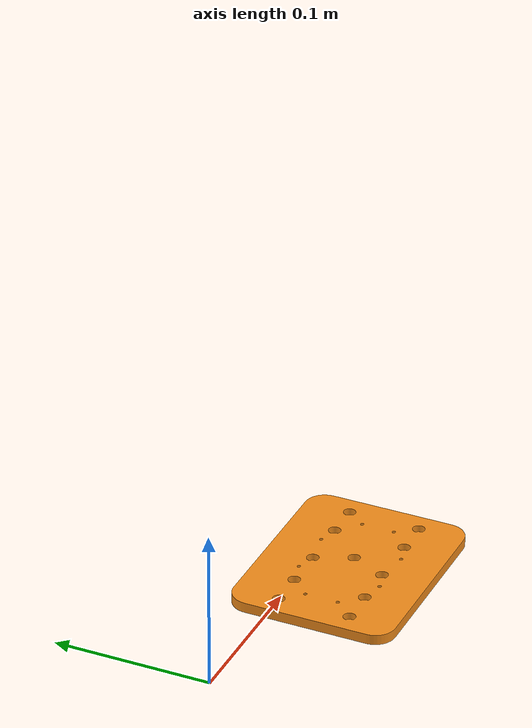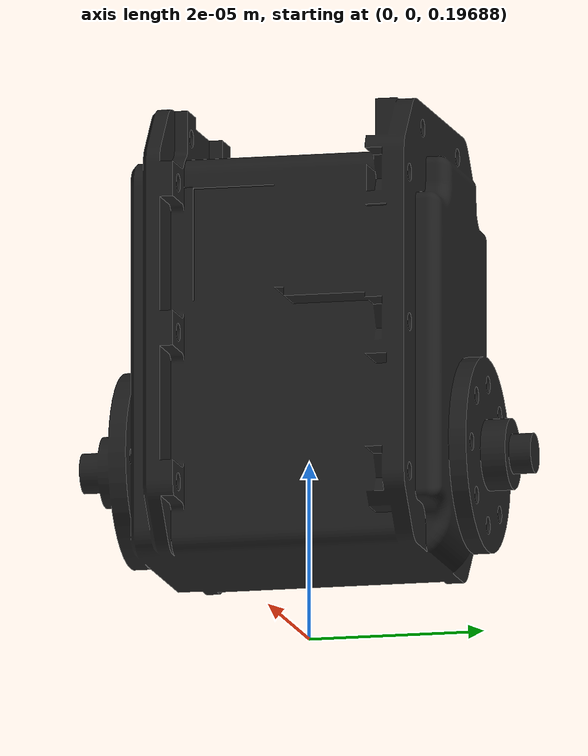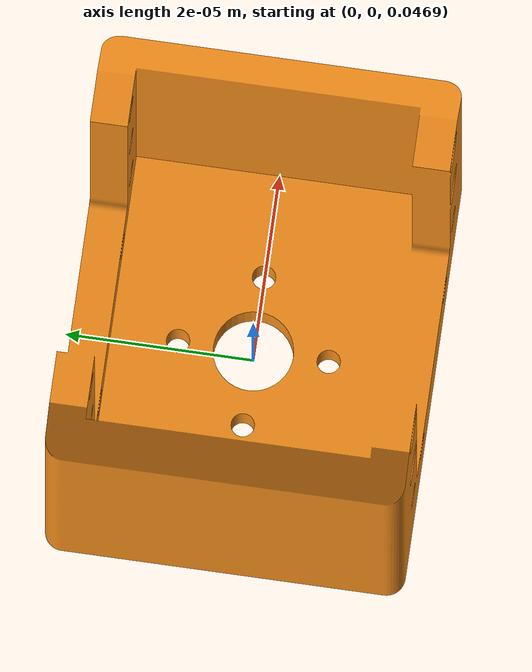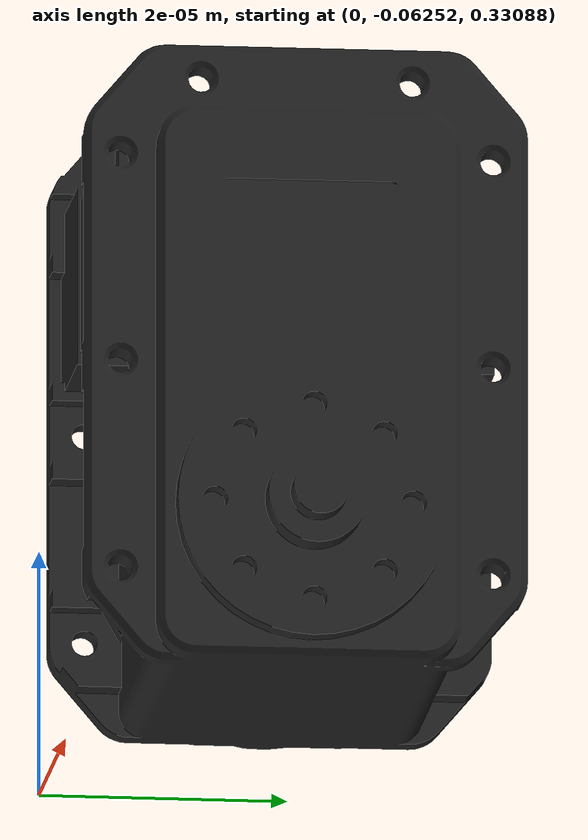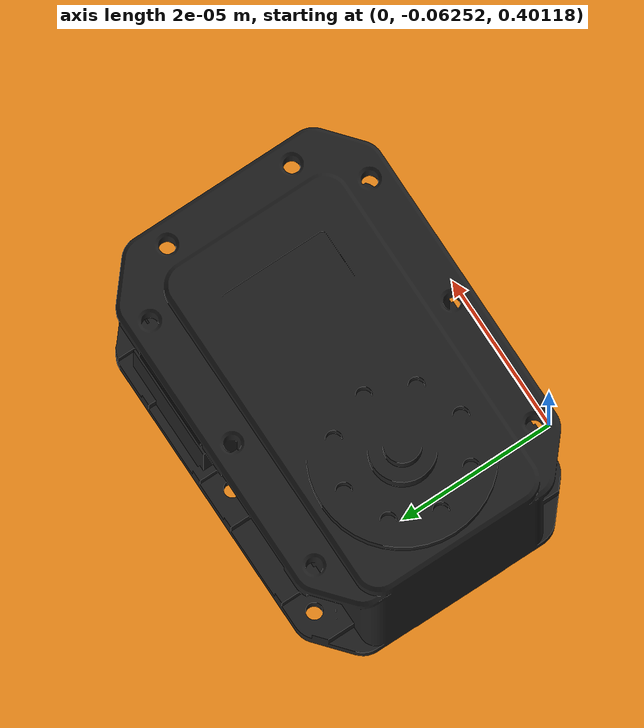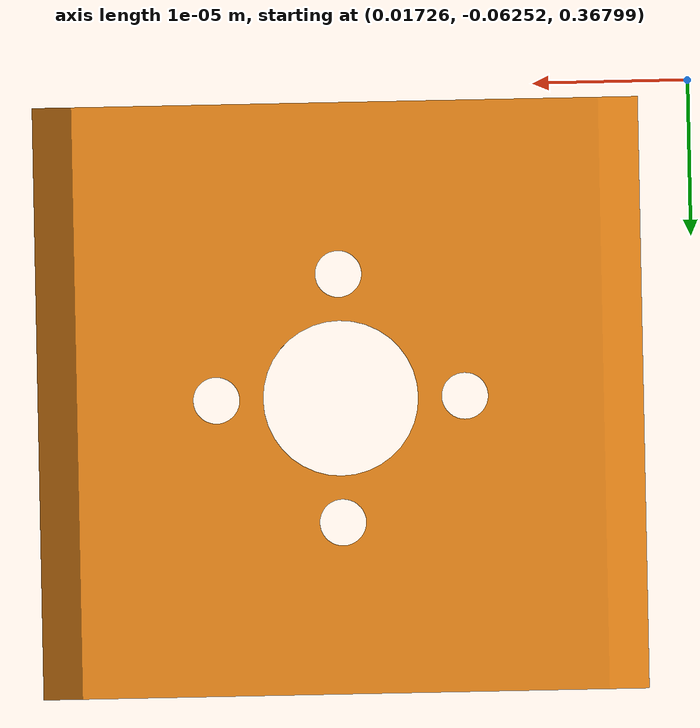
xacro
<?xml version="1.0"?>
<robot name="bbot" xmlns:xacro="http://www.ros.org/wiki/xacro">
	<!-- Import Rviz colors -->
	<xacro:include filename="$(find bbot_description)/urdf/materials.xacro" />

	<!-- Import the bbot macro -->
	<xacro:include filename="$(find bbot_description)/urdf/bbot.xacro"/>

  <!-- arguments to pass on -->
  <xacro:arg name="hardware_interface" default="PositionJointInterface"/>
	<xacro:arg name="robot_name" default="bbot"/>
	<xacro:arg name="origin_xyz" default="0 0 0"/>
  <xacro:arg name="origin_rpy" default="0 0 0"/>

  <!-- Fix to world-->
  <link name="world"/>

  <!-- call bbot xacro -->
  <xacro:bbot hardware_interface="$(arg hardware_interface)" robot_name="$(arg robot_name)" parent="world">
  	<origin xyz="$(arg origin_xyz)" rpy="$(arg origin_rpy)"/>
  </xacro:bbot>

</robot>

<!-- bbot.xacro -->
<robot xmlns:xacro="http://www.ros.org/wiki/xacro">
    <!-- Import all Gazebo customization elements including colors-->
    <xacro:include filename="$(find bbot_description)/urdf/bbot.gazebo.xacro"/>
    <!-- Import Transmissions -->
    <xacro:include filename="$(find bbot_description)/urdf/bbot.transmission.xacro" />

    <!-- Include Utilities -->

    <!--Define properties-->
    <xacro:property name="safety_controller_k_pos" value="100" />
    <xacro:property name="safety_controller_k_vel" value="2" />
    <xacro:property name="joint_damping" value="0.5" />
    <xacro:property name="max_effort" value="300"/>
    <xacro:property name="max_velocity" value="10"/>

    <xacro:macro name="bbot" params="parent hardware_interface robot_name *origin">
        <!-- joint between parent (a.k.a. world) and link_0 -->
        <joint name="${parent}_${robot_name}_joint" type="fixed">
            <xacro:insert_block name="origin"/>
            <parent link="${parent}"/>
            <child link="${robot_name}_link_baseplate"/>
        </joint>

        <link name="${robot_name}_link_baseplate">
            <inertial>
                <origin xyz="0 0 0" rpy="${pi/2.0} 0 0"/>
                <mass value="1"/>
                <inertia ixx="0.000070" ixy="0" ixz="0" iyy="0.000174" iyz="0" izz="0.000107"/>
            </inertial>

            <visual>
                <origin xyz="0 0 0" rpy="${pi/2.0} 0 0"/>
                <geometry>
                    <mesh filename="package://bbot_description/meshes/baseplate.stl" scale="0.001 0.001 0.001"/>
                </geometry>
                <material name="Orange"/>
            </visual>

            <collision>
                <origin xyz="0 0 0" rpy="${pi/2.0} 0 0"/>
                <geometry>
                    <mesh filename="package://bbot_description/meshes/baseplate.stl" scale="0.001 0.001 0.001"/>
                </geometry>
                <material name="Orange"/>
            </collision>
        </link>

        <joint name="${robot_name}_joint_base_motor1" type="fixed">
            <parent link="${robot_name}_link_baseplate"/>
            <child link="${robot_name}_link_motor1"/>
            <origin xyz="0 0 0.0264" rpy="0 0 0"/>
        </joint>

        <link name="${robot_name}_link_motor1">
            <inertial>
                <origin xyz="0 0 0" rpy="0 0 ${pi/2.0}"/>
                <mass value="1"/>
                <inertia ixx="0.000031" ixy="0" ixz="0" iyy="0.000013" iyz="0" izz="0.000027"/>
            </inertial>

            <visual>
                <origin xyz="0 0 0" rpy="0 0 ${pi/2.0}"/>
                <geometry>
                    <mesh filename="package://bbot_description/meshes/motor_no_idler.stl" scale="0.001 0.001 0.001"/>
                </geometry>
                <material name="Black"/>
            </visual>

            <collision>
                <origin xyz="0 0 0" rpy="0 0 ${pi/2.0}"/>
                <geometry>
                    <mesh filename="package://bbot_description/meshes/motor_no_idler.stl" scale="0.001 0.001 0.001"/>
                </geometry>
                <material name="Black"/>
            </collision>
        </link>

        <joint name="${robot_name}_joint_motor1_link1_2" type="revolute">
            <parent link="${robot_name}_link_motor1"/>
            <child link="${robot_name}_link1_2"/>
            <origin xyz="0 0 0.0205" rpy="0 0 0"/>
            <axis xyz="0 0 1"/>
            <limit lower="${-170 * pi / 180}" upper="${170 * pi / 180}"
                effort="${max_effort}" velocity="${max_velocity}" />
            <safety_controller soft_lower_limit="${-168 * pi / 180}"
                     soft_upper_limit="${168 * pi / 180}"
                     k_position="${safety_controller_k_pos}"
                     k_velocity="${safety_controller_k_vel}"/>
            <dynamics damping="${joint_damping}"/>
        </joint>

        <link name="${robot_name}_link1_2">
            <inertial>
                <origin xyz="0 0 0" rpy="${pi/2.0} 0 ${pi/2.0}"/>
                <mass value="1"/>
                <inertia ixx="1.0" ixy="0" ixz="0" iyy="1" iyz="0" izz="1"/>
            </inertial>

            <visual>
                <origin xyz="0 0 0" rpy="${pi/2.0} 0 ${pi/2.0}"/>
                <geometry>
                    <mesh filename="package://bbot_description/meshes/link1_2.stl" scale="0.001 0.001 0.001"/>
                </geometry>
                <material name="Orange"/>
            </visual>

            <collision>
                <origin xyz="0 0 0" rpy="${pi/2.0} 0 ${pi/2.0}"/>
                <geometry>
                    <mesh filename="package://bbot_description/meshes/link1_2.stl" scale="0.001 0.001 0.001"/>
                </geometry>
                <material name="Orange"/>
            </collision>
        </link>

        <joint name="${robot_name}_joint_link1_2_motor2" type="fixed">
            <parent link="${robot_name}_link1_2"/>
            <child link="${robot_name}_link_motor2"/>
            <origin xyz="0 0 0.045" rpy="${pi/2.0} ${-pi/2.0} 0"/>
        </joint>

        <link name="${robot_name}_link_motor2">
            <inertial>
                <origin xyz="0 0 0" rpy="0 0 ${-pi/2.0}"/>
                <mass value="1"/>
                <inertia ixx="1.0" ixy="0" ixz="0" iyy="1" iyz="0" izz="1"/>
            </inertial>

            <visual>
                <origin xyz="0 0 0" rpy="0 0 ${-pi/2.0}"/>
                <geometry>
                    <mesh filename="package://bbot_description/meshes/motor_with_idler.stl" scale="0.001 0.001 0.001"/>
                </geometry>
                <material name="Black"/>
            </visual>

            <collision>
                <origin xyz="0 0 0" rpy="0 0 ${-pi/2.0}"/>
                <geometry>
                    <mesh filename="package://bbot_description/meshes/motor_with_idler.stl" scale="0.001 0.001 0.001"/>
                </geometry>
                <material name="Black"/>
            </collision>
        </link>

        <joint name="${robot_name}_joint_motor2_link2_3" type="revolute">
            <parent link="${robot_name}_link_motor2"/>
            <child link="${robot_name}_link2_3"/>
            <origin xyz="0 0 0" rpy="0 0 0"/>
            <axis xyz="0 0 1"/>
            <limit lower="${-170 * pi / 180}" upper="${170 * pi / 180}"
                effort="${max_effort}" velocity="${max_velocity}" />
            <safety_controller soft_lower_limit="${-168 * pi / 180}"
                     soft_upper_limit="${168 * pi / 180}"
                     k_position="${safety_controller_k_pos}"
                     k_velocity="${safety_controller_k_vel}"/>
            <dynamics damping="${joint_damping}"/>
        </joint>

        <link name="${robot_name}_link2_3">
            <inertial>
                <origin xyz="0.0275 0 0" rpy="${pi/2.0} ${-pi/2.0} 0"/>
                <mass value="1"/>
                <inertia ixx="1.0" ixy="0" ixz="0" iyy="1" iyz="0" izz="1"/>
            </inertial>

            <visual>
                <origin xyz="0.0275 0 0" rpy="${pi/2.0} ${-pi/2.0} 0"/>
                <geometry>
                    <mesh filename="package://bbot_description/meshes/link2_3.stl" scale="0.001 0.001 0.001"/>
                </geometry>
                <material name="Orange"/>
            </visual>

            <collision>
                <origin xyz="0.0275 0 0" rpy="${pi/2.0} ${-pi/2.0} 0"/>
                <geometry>
                    <mesh filename="package://bbot_description/meshes/link2_3.stl" scale="0.001 0.001 0.001"/>
                </geometry>
                <material name="Orange"/>
            </collision>
        </link>

        <joint name="${robot_name}_joint_link2_3_motor3" type="revolute">
            <parent link="${robot_name}_link2_3"/>
            <child link="${robot_name}_link_motor3"/>
            <origin xyz="0.105 0 0" rpy="0 0 0"/>
            <axis xyz="0 0 1"/>
            <limit lower="${-170 * pi / 180}" upper="${170 * pi / 180}"
                effort="${max_effort}" velocity="${max_velocity}" />
            <safety_controller soft_lower_limit="${-168 * pi / 180}"
                     soft_upper_limit="${168 * pi / 180}"
                     k_position="${safety_controller_k_pos}"
                     k_velocity="${safety_controller_k_vel}"/>
            <dynamics damping="${joint_damping}"/>
        </joint>

        <link name="${robot_name}_link_motor3">
            <inertial>
                <origin xyz="0 0 0" rpy="0 0 ${pi/2.0}"/>
                <mass value="1"/>
                <inertia ixx="1.0" ixy="0" ixz="0" iyy="1" iyz="0" izz="1"/>
            </inertial>

            <visual>
                <origin xyz="0 0 0" rpy="0 0 ${pi/2.0}"/>
                <geometry>
                    <mesh filename="package://bbot_description/meshes/motor_with_idler.stl" scale="0.001 0.001 0.001"/>
                </geometry>
                <material name="Black"/>
            </visual>

            <collision>
                <origin xyz="0 0 0" rpy="0 0 ${pi/2.0}"/>
                <geometry>
                    <mesh filename="package://bbot_description/meshes/motor_with_idler.stl" scale="0.001 0.001 0.001"/>
                </geometry>
                <material name="Black"/>
            </collision>
        </link>

        <joint name="${robot_name}_joint_motor3_link3_4" type="fixed">
            <parent link="${robot_name}_link_motor3"/>
            <child link="${robot_name}_link3_4"/>
            <origin xyz="0 0 0" rpy="0 0 0"/>
        </joint>

        <link name="${robot_name}_link3_4">
            <inertial>
                <origin xyz="0.067 0 0.01" rpy="0 0 0"/>
                <mass value="1"/>
                <inertia ixx="1.0" ixy="0" ixz="0" iyy="1" iyz="0" izz="1"/>
            </inertial>

            <visual>
                <origin xyz="0.067 0 0.01" rpy="0 0 0"/>
                <geometry>
                    <mesh filename="package://bbot_description/meshes/link3_4.stl" scale="0.001 0.001 0.001"/>
                </geometry>
                <material name="Orange"/>
            </visual>

            <collision>
                <origin xyz="0.067 0 0.01" rpy="0 0 0"/>
                <geometry>
                    <mesh filename="package://bbot_description/meshes/link3_4.stl" scale="0.001 0.001 0.001"/>
                </geometry>
                <material name="Orange"/>
            </collision>
        </link>

        <joint name="${robot_name}_joint_link3_4_motor4" type="fixed">
            <parent link="${robot_name}_link3_4"/>
            <child link="${robot_name}_link_motor4"/>
            <origin xyz="0.134 0 0" rpy="0 0 0"/>
        </joint>

        <link name="${robot_name}_link_motor4">
            <inertial>
                <origin xyz="0 0 0" rpy="0 0 ${-pi/2.0}"/>
                <mass value="1"/>
                <inertia ixx="1.0" ixy="0" ixz="0" iyy="1" iyz="0" izz="1"/>
            </inertial>

            <visual>
                <origin xyz="0 0 0" rpy="0 0 ${-pi/2.0}"/>
                <geometry>
                    <mesh filename="package://bbot_description/meshes/motor_with_idler.stl" scale="0.001 0.001 0.001"/>
                </geometry>
                <material name="Black"/>
            </visual>

            <collision>
                <origin xyz="0 0 0" rpy="0 0 ${-pi/2.0}"/>
                <geometry>
                    <mesh filename="package://bbot_description/meshes/motor_with_idler.stl" scale="0.001 0.001 0.001"/>
                </geometry>
                <material name="Black"/>
            </collision>
        </link>

        <joint name="${robot_name}_joint_motor4_link4_5" type="revolute">
            <parent link="${robot_name}_link_motor4"/>
            <child link="${robot_name}_link4_5"/>
            <origin xyz="0 0 0" rpy="0 0 0"/>
            <axis xyz="0 0 1"/>
            <limit lower="${-170 * pi / 180}" upper="${170 * pi / 180}"
                effort="${max_effort}" velocity="${max_velocity}" />
            <safety_controller soft_lower_limit="${-168 * pi / 180}"
                     soft_upper_limit="${168 * pi / 180}"
                     k_position="${safety_controller_k_pos}"
                     k_velocity="${safety_controller_k_vel}"/>
            <dynamics damping="${joint_damping}"/>
        </joint>

        <link name="${robot_name}_link4_5">
            <inertial>
                <origin xyz="0 0 0.0235" rpy="0 0 0"/>
                <mass value="1"/>
                <inertia ixx="1.0" ixy="0" ixz="0" iyy="1" iyz="0" izz="1"/>
            </inertial>

            <visual>
                <origin xyz="0 0 0.0235" rpy="0 0 0"/>
                <geometry>
                    <mesh filename="package://bbot_description/meshes/link4_5.stl" scale="0.001 0.001 0.001"/>
                </geometry>
                <material name="Orange"/>
            </visual>

            <collision>
                <origin xyz="0 0 0.0235" rpy="0 0 0"/>
                <geometry>
                    <mesh filename="package://bbot_description/meshes/link4_5.stl" scale="0.001 0.001 0.001"/>
                </geometry>
                <material name="Orange"/>
            </collision>
        </link>

        <joint name="${robot_name}_joint_link4_5_motor5" type="revolute">
            <parent link="${robot_name}_link4_5"/>
            <child link="${robot_name}_link_motor5"/>
            <origin xyz="0 0 0.0625" rpy="${pi/2.0} ${-pi/2.0} 0"/>
            <axis xyz="0 0 1"/>
            <limit lower="${-170 * pi / 180}" upper="${170 * pi / 180}"
                effort="${max_effort}" velocity="${max_velocity}" />
            <safety_controller soft_lower_limit="${-168 * pi / 180}"
                     soft_upper_limit="${168 * pi / 180}"
                     k_position="${safety_controller_k_pos}"
                     k_velocity="${safety_controller_k_vel}"/>
            <dynamics damping="${joint_damping}"/>
        </joint>

        <link name="${robot_name}_link_motor5">
            <inertial>
                <origin xyz="0 0 0" rpy="0 0 0"/>
                <mass value="1"/>
                <inertia ixx="1.0" ixy="0" ixz="0" iyy="1" iyz="0" izz="1"/>
            </inertial>

            <visual>
                <origin xyz="0 0 0" rpy="0 0 0"/>
                <geometry>
                    <mesh filename="package://bbot_description/meshes/motor_with_idler.stl" scale="0.001 0.001 0.001"/>
                </geometry>
                <material name="Black"/>
            </visual>

            <collision>
                <origin xyz="0 0 0" rpy="0 0 0"/>
                <geometry>
                    <mesh filename="package://bbot_description/meshes/motor_with_idler.stl" scale="0.001 0.001 0.001"/>
                </geometry>
                <material name="Black"/>
            </collision>
        </link>

        <joint name="${robot_name}_joint_motor5_link5_6" type="fixed">
            <parent link="${robot_name}_link_motor5"/>
            <child link="${robot_name}_link5_6"/>
            <origin xyz="0 -0.0371 0" rpy="0 0 0"/>
        </joint>

        <link name="${robot_name}_link5_6">
            <inertial>
                <origin xyz="0 0 0.0173" rpy="${pi/2.0} 0 ${pi/2.0}"/>
                <mass value="1"/>
                <inertia ixx="1.0" ixy="0" ixz="0" iyy="1" iyz="0" izz="1"/>
            </inertial>

            <visual>
                <origin xyz="0 0 0.0173" rpy="${pi/2.0} 0 ${pi/2.0}"/>
                <geometry>
                    <mesh filename="package://bbot_description/meshes/link5_6.stl" scale="0.001 0.001 0.001"/>
                </geometry>
                <material name="Orange"/>
            </visual>

            <collision>
                <origin xyz="0 0 0.0173" rpy="${pi/2.0} 0 ${pi/2.0}"/>
                <geometry>
                    <mesh filename="package://bbot_description/meshes/link5_6.stl" scale="0.001 0.001 0.001"/>
                </geometry>
                <material name="Orange"/>
            </collision>
        </link>

        <joint name="${robot_name}_joint_link5_6_motor6" type="revolute">
            <parent link="${robot_name}_link5_6"/>
            <child link="${robot_name}_link_motor6"/>
            <origin xyz="0 -0.0332 0" rpy="${pi/2.0} 0 0"/>
            <axis xyz="0 0 1"/>
            <limit lower="${-170 * pi / 180}" upper="${170 * pi / 180}"
                effort="${max_effort}" velocity="${max_velocity}" />
            <safety_controller soft_lower_limit="${-168 * pi / 180}"
                     soft_upper_limit="${168 * pi / 180}"
                     k_position="${safety_controller_k_pos}"
                     k_velocity="${safety_controller_k_vel}"/>
            <dynamics damping="${joint_damping}"/>
        </joint>

        <link name="${robot_name}_link_motor6">
            <inertial>
                <origin xyz="0 0 0" rpy="0 0 ${pi}"/>
                <mass value="1"/>
                <inertia ixx="1.0" ixy="0" ixz="0" iyy="1" iyz="0" izz="1"/>
            </inertial>

            <visual>
                <origin xyz="0 0 0" rpy="0 0 ${pi}"/>
                <geometry>
                    <mesh filename="package://bbot_description/meshes/motor_with_idler.stl" scale="0.001 0.001 0.001"/>
                </geometry>
                <material name="Black"/>
            </visual>

            <collision>
                <origin xyz="0 0 0" rpy="0 0 ${pi}"/>
                <geometry>
                    <mesh filename="package://bbot_description/meshes/motor_with_idler.stl" scale="0.001 0.001 0.001"/>
                </geometry>
                <material name="Black"/>
            </collision>
        </link>

        <!-- joint between motor 5 and link 5_6 -->
        <!-- link 5_6 -->
        <!-- joint between link 5_6 and motor6 -->
        <!-- motor 6 -->
        <!-- joint between motor6 and link_grasper_base-->
        <!-- link_grasper_base -->
        <!-- joint between link_grasper_base and motor7 -->
        <!-- motor 7 -->
        <!-- joint between motor 7 and link_claw1-->
        <!-- link_claw1 -->

        <xacro:bbot_gazebo robot_name="${robot_name}"/>
        <xacro:bbot_transmission hardware_interface="${hardware_interface}"/>
    </xacro:macro>

</robot>
